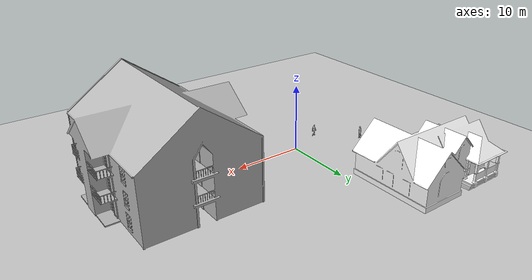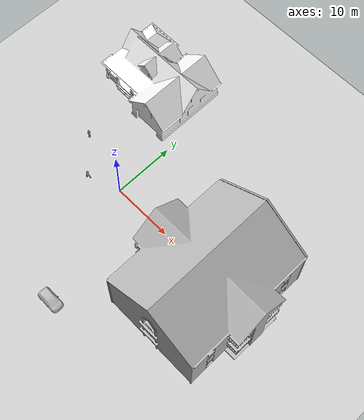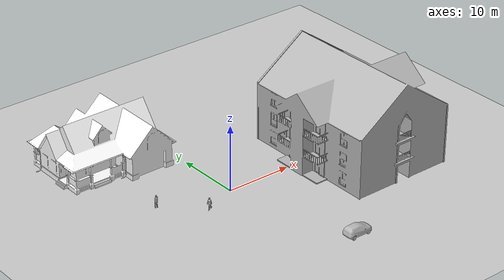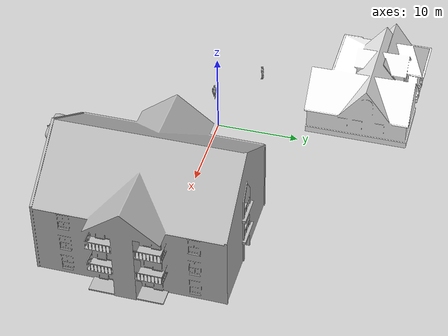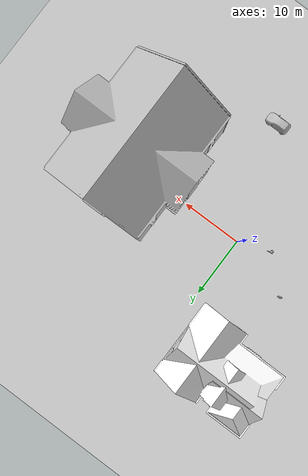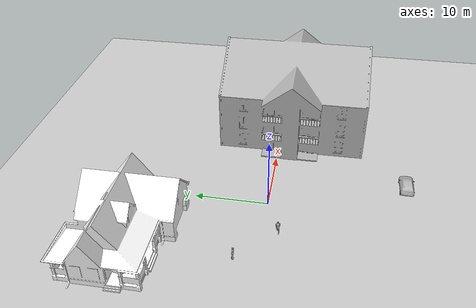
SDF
<sdf version="1.6">
 <world name="default">
  <light name="sun" type="directional">
   <pose>0 0 10 0 -0 0</pose>
   <diffuse>0.8 0.8 0.8 1</diffuse>
   <specular>0.2 0.2 0.2 1</specular>
   <attenuation>
    <range>1000</range>
    <constant>0.9</constant>
    <linear>0.01</linear>
    <quadratic>0.001</quadratic>
   </attenuation>
   <direction>-0.5 0.1 -0.9</direction>
  </light>
  <model name="my_ground_plane">
   <static>1</static>
   <link name="link">
    <collision name="collision">
     <geometry><plane><normal>0 0 1</normal><size>100 100</size></plane></geometry>
     <surface><friction><ode><mu>100</mu><mu2>50</mu2></ode></friction></surface>
    </collision>
    <visual name="visual">
     <cast_shadows>0</cast_shadows>
     <geometry><plane><normal>0 0 1</normal><size>100 100</size></plane></geometry>
     <material>
      <script>
       <uri>model://my_ground_plane/materials/scripts</uri>
       <uri>model://my_ground_plane/materials/textures/</uri>
       <name>MyGroundPlane/Image</name>
      </script>
     </material>
    </visual>
   </link>
  </model>
  <physics name="default_physics" default="0" type="ode">
   <ode>
    <solver>
     <type>quick</type>
     <iters>10</iters>
     <sor>1.3</sor>
     <use_dynamic_moi_rescaling>0</use_dynamic_moi_rescaling>
    </solver>
    <constraints>
     <cfm>0</cfm>
     <erp>0.2</erp>
     <contact_max_correcting_vel>100</contact_max_correcting_vel>
     <contact_surface_layer>0.001</contact_surface_layer>
    </constraints>
   </ode>
   <max_step_size>0.004</max_step_size>
   <real_time_factor>1</real_time_factor>
   <real_time_update_rate>250</real_time_update_rate>
  </physics>
  <model name="House 1">
   <static>1</static>
   <link name="link">
    <collision name="collision">
     <geometry><mesh><uri>model://house_1/meshes/house_1.dae</uri><scale>1.5 1.5 1.5</scale></mesh></geometry>
    </collision>
    <visual name="visual">
     <geometry><mesh><uri>model://house_1/meshes/house_1.dae</uri><scale>1.5 1.5 1.5</scale></mesh></geometry>
     <material>
      <script>
       <uri>model://house_1/materials/scripts</uri>
       <uri>model://house_1/materials/textures</uri>
       <name>House_1/Diffuse</name>
      </script>
      <shader type="normal_map_tangent_space"><normal_map>House_1_Normal.png</normal_map></shader>
     </material>
    </visual>
   </link>
   <pose>-9.12035 17.2107 0 0 -0 0</pose>
  </model>
  <model name="apartment">
   <static>1</static>
   <link name="link">
    <collision name="collision">
     <geometry><mesh><uri>model://apartment/meshes/apartment.dae</uri></mesh></geometry>
    </collision>
    <visual name="visual">
     <geometry><mesh><uri>model://apartment/meshes/apartment.dae</uri></mesh></geometry>
    </visual>
   </link>
   <pose>20.153 -1.81953 0 0 -0 0</pose>
  </model>
  <model name="hatchback">
   <static>1</static>
   <link name="link">
    <collision name="collision">
     <pose>0 0 0 0 -0 1.5708</pose>
     <geometry>
      <mesh><scale>0.0254 0.0254 0.0254</scale><uri>model://hatchback/meshes/hatchback.obj</uri></mesh>
     </geometry>
    </collision>
    <visual name="visual">
     <pose>0 0 0 0 -0 1.5708</pose>
     <geometry>
      <mesh><scale>0.0254 0.0254 0.0254</scale><uri>model://hatchback/meshes/hatchback.obj</uri></mesh>
     </geometry>
    </visual>
   </link>
   <pose>5.74252 -18.7476 0 0 -0 0</pose>
  </model>
  <model name="person_standing">
   <link name="link">
    <inertial>
     <pose>0 -0.1 0.95 0 -0 0</pose>
     <mass>80</mass>
     <inertia><ixx>24.88</ixx><ixy>0</ixy><ixz>0</ixz><iyy>25.73</iyy><iyz>0</iyz><izz>2.48</izz></inertia>
    </inertial>
    <collision name="bottom">
     <pose>0 -0.1 0.01 0 -0 0</pose>
     <geometry><box><size>0.5 0.35 0.02</size></box></geometry>
    </collision>
    <collision name="person">
     <pose>0 0 0.02 0.04 -0 0</pose>
     <geometry><mesh><uri>model://person_standing/meshes/standing.dae</uri></mesh></geometry>
    </collision>
    <visual name="visual">
     <pose>0 0 0.02 0.04 -0 0</pose>
     <geometry><mesh><uri>model://person_standing/meshes/standing.dae</uri></mesh></geometry>
    </visual>
   </link>
   <pose>-10.3447 2.9932 -9e-06 1.2e-05 2e-05 -4.9e-05</pose>
  </model>
  <model name="person_walking">
   <link name="link">
    <inertial>
     <pose>0 0 0.95 0 -0 0</pose>
     <mass>80</mass>
     <inertia><ixx>27.82</ixx><ixy>0</ixy><ixz>0</ixz><iyy>24.88</iyy><iyz>0</iyz><izz>4.57</izz></inertia>
    </inertial>
    <collision name="bottom">
     <pose>0 0 0.01 0 -0 0</pose>
     <geometry><box><size>0.35 0.75 0.02</size></box></geometry>
    </collision>
    <collision name="person">
     <pose>0 0 -0.02 0 -0 0</pose>
     <geometry><mesh><uri>model://person_walking/meshes/walking.dae</uri></mesh></geometry>
    </collision>
    <visual name="visual">
     <pose>0 0 -0.02 0 -0 0</pose>
     <geometry><mesh><uri>model://person_walking/meshes/walking.dae</uri></mesh></geometry>
    </visual>
   </link>
   <pose>-5.09057 -1.93781 0 -5e-06 -0 -1.4868</pose>
  </model>
  <gravity>0 0 -9.8</gravity>
  <magnetic_field>6e-06 2.3e-05 -4.2e-05</magnetic_field>
  <atmosphere type="adiabatic"/>
  <scene><ambient>0.4 0.4 0.4 1</ambient><background>0.7 0.7 0.7 1</background><shadows>1</shadows></scene>
  <spherical_coordinates>
   <surface_model>EARTH_WGS84</surface_model>
   <latitude_deg>0</latitude_deg>
   <longitude_deg>0</longitude_deg>
   <elevation>0</elevation>
   <heading_deg>0</heading_deg>
  </spherical_coordinates>
 </world>
</sdf>
